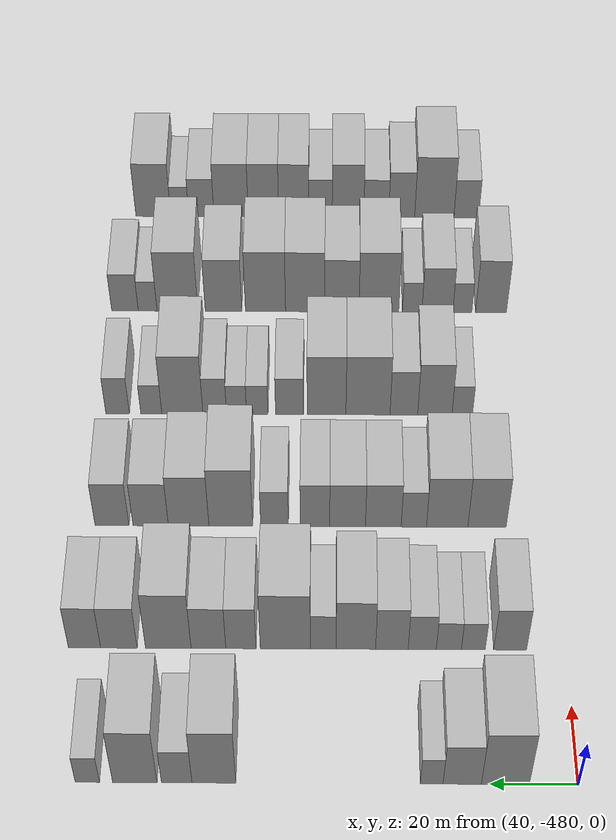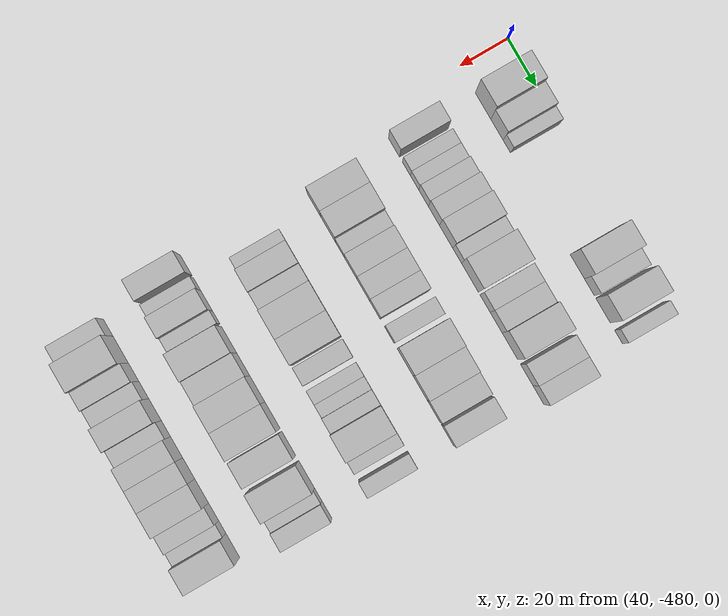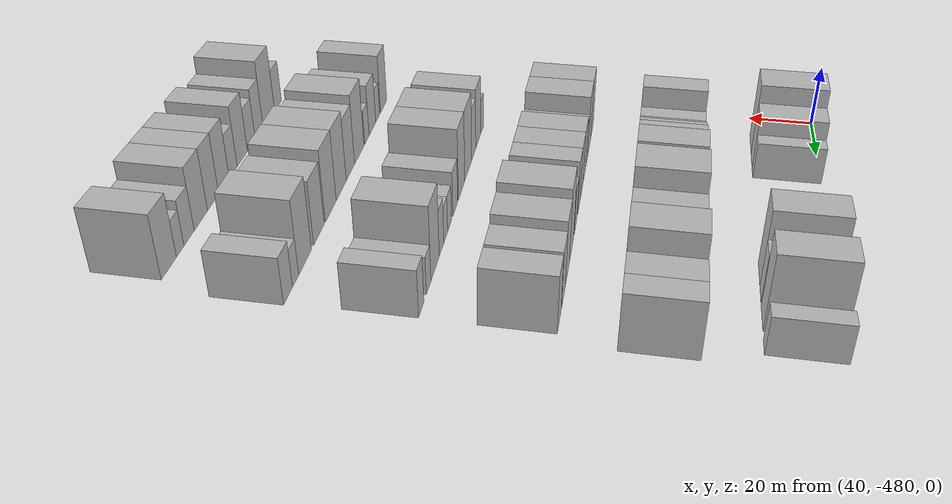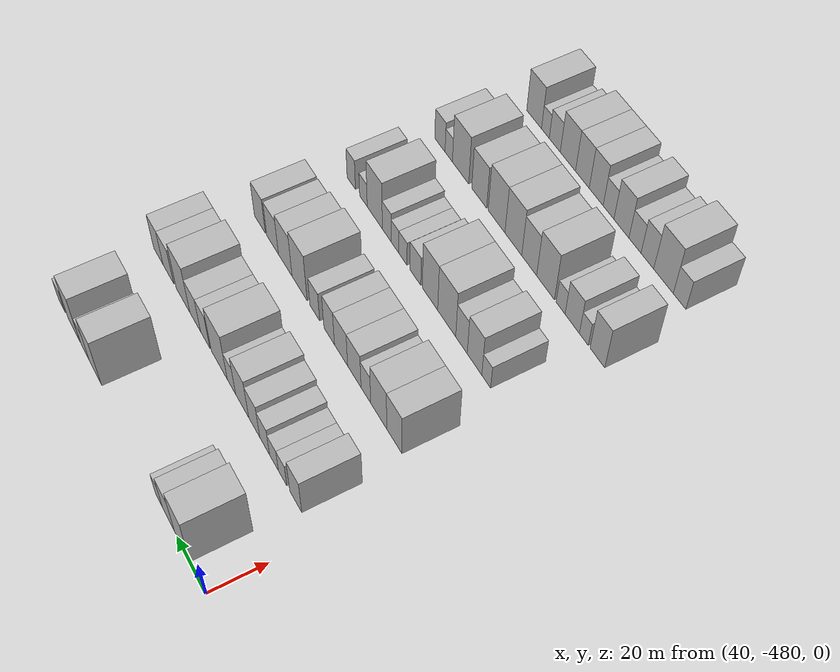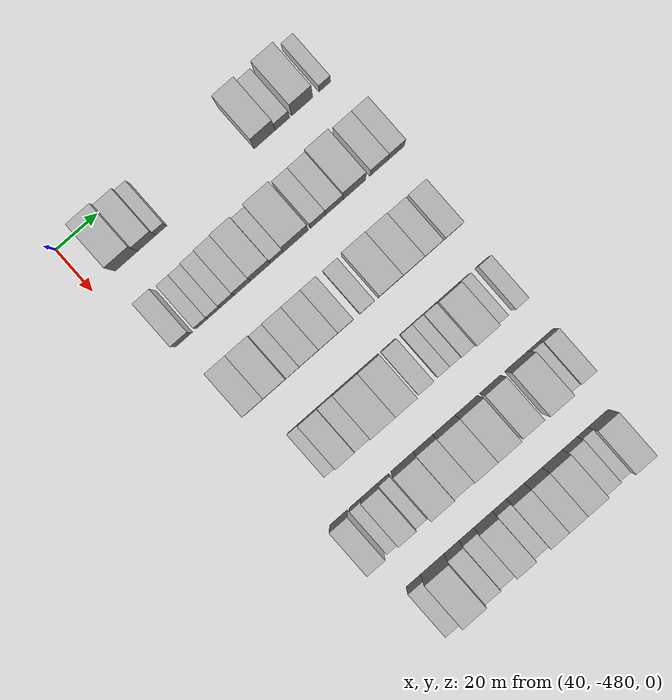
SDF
<sdf version="1.6">
 <world name="default">
  <model name="building_13">
   <static>1</static>
   <pose>50.0000 -463.4643 0 0.000000 0.000000 0.000000</pose>
   <link name="link">
    <pose>0 0 12.00 0 0 0</pose>
    <collision name="collision"><geometry><box><size>20.0000 10.9425 24.0000</size></box></geometry></collision>
    <visual name="visual">
     <cast_shadows>0</cast_shadows>
     <geometry><box><size>20.0000 10.9425 24.0000</size></box></geometry>
     <material>
      <script>
       <uri>model://HANNAS_wall/materials/scripts</uri>
       <uri>model://HANNAS_wall/materials/textures</uri>
       <name>vrc/HANNAS_wall</name>
      </script>
     </material>
    </visual>
   </link>
  </model>
  <model name="building_14">
   <static>1</static>
   <pose>50.0000 -453.6241 0 0.000000 0.000000 0.000000</pose>
   <link name="link">
    <pose>0 0 9.00 0 0 0</pose>
    <collision name="collision"><geometry><box><size>20.0000 8.7379 18.0000</size></box></geometry></collision>
    <visual name="visual">
     <cast_shadows>0</cast_shadows>
     <geometry><box><size>20.0000 8.7379 18.0000</size></box></geometry>
     <material>
      <script>
       <uri>model://HANNAS_wall/materials/scripts</uri>
       <uri>model://HANNAS_wall/materials/textures</uri>
       <name>vrc/HANNAS_wall</name>
      </script>
     </material>
    </visual>
   </link>
  </model>
  <model name="building_15">
   <static>1</static>
   <pose>50.0000 -446.6677 0 0.000000 0.000000 0.000000</pose>
   <link name="link">
    <pose>0 0 6.00 0 0 0</pose>
    <collision name="collision"><geometry><box><size>20.0000 5.1750 12.0000</size></box></geometry></collision>
    <visual name="visual">
     <cast_shadows>0</cast_shadows>
     <geometry><box><size>20.0000 5.1750 12.0000</size></box></geometry>
     <material>
      <script>
       <uri>model://HANNAS_wall/materials/scripts</uri>
       <uri>model://HANNAS_wall/materials/textures</uri>
       <name>vrc/HANNAS_wall</name>
      </script>
     </material>
    </visual>
   </link>
  </model>
  <model name="building_16">
   <static>1</static>
   <pose>50.0000 -397.0760 0 0.000000 0.000000 0.000000</pose>
   <link name="link">
    <pose>0 0 12.00 0 0 0</pose>
    <collision name="collision"><geometry><box><size>20.0000 10.0028 24.0000</size></box></geometry></collision>
    <visual name="visual">
     <cast_shadows>0</cast_shadows>
     <geometry><box><size>20.0000 10.0028 24.0000</size></box></geometry>
     <material>
      <script>
       <uri>model://HANNAS_wall/materials/scripts</uri>
       <uri>model://HANNAS_wall/materials/textures</uri>
       <name>vrc/HANNAS_wall</name>
      </script>
     </material>
    </visual>
   </link>
  </model>
  <model name="building_17">
   <static>1</static>
   <pose>50.0000 -388.5987 0 0.000000 0.000000 0.000000</pose>
   <link name="link">
    <pose>0 0 7.50 0 0 0</pose>
    <collision name="collision"><geometry><box><size>20.0000 6.9518 15.0000</size></box></geometry></collision>
    <visual name="visual">
     <cast_shadows>0</cast_shadows>
     <geometry><box><size>20.0000 6.9518 15.0000</size></box></geometry>
     <material>
      <script>
       <uri>model://HANNAS_wall/materials/scripts</uri>
       <uri>model://HANNAS_wall/materials/textures</uri>
       <name>vrc/HANNAS_wall</name>
      </script>
     </material>
    </visual>
   </link>
  </model>
  <model name="building_18">
   <static>1</static>
   <pose>50.0000 -379.0550 0 0.000000 0.000000 0.000000</pose>
   <link name="link">
    <pose>0 0 12.00 0 0 0</pose>
    <collision name="collision"><geometry><box><size>20.0000 10.1357 24.0000</size></box></geometry></collision>
    <visual name="visual">
     <cast_shadows>0</cast_shadows>
     <geometry><box><size>20.0000 10.1357 24.0000</size></box></geometry>
     <material>
      <script>
       <uri>model://HANNAS_wall/materials/scripts</uri>
       <uri>model://HANNAS_wall/materials/textures</uri>
       <name>vrc/HANNAS_wall</name>
      </script>
     </material>
    </visual>
   </link>
  </model>
  <model name="building_19">
   <static>1</static>
   <pose>50.0000 -368.2282 0 0.000000 0.000000 0.000000</pose>
   <link name="link">
    <pose>0 0 6.00 0 0 0</pose>
    <collision name="collision"><geometry><box><size>20.0000 5.5179 12.0000</size></box></geometry></collision>
    <visual name="visual">
     <cast_shadows>0</cast_shadows>
     <geometry><box><size>20.0000 5.5179 12.0000</size></box></geometry>
     <material>
      <script>
       <uri>model://HANNAS_wall/materials/scripts</uri>
       <uri>model://HANNAS_wall/materials/textures</uri>
       <name>vrc/HANNAS_wall</name>
      </script>
     </material>
    </visual>
   </link>
  </model>
  <model name="building_129">
   <static>1</static>
   <pose>85.0000 -466.4893 0 0.000000 0.000000 0.000000</pose>
   <link name="link">
    <pose>0 0 9.00 0 0 0</pose>
    <collision name="collision"><geometry><box><size>20.0000 7.8725 18.0000</size></box></geometry></collision>
    <visual name="visual">
     <cast_shadows>0</cast_shadows>
     <geometry><box><size>20.0000 7.8725 18.0000</size></box></geometry>
     <material>
      <script>
       <uri>model://HANNAS_wall/materials/scripts</uri>
       <uri>model://HANNAS_wall/materials/textures</uri>
       <name>vrc/HANNAS_wall</name>
      </script>
     </material>
    </visual>
   </link>
  </model>
  <model name="building_130">
   <static>1</static>
   <pose>85.0000 -457.6998 0 0.000000 0.000000 0.000000</pose>
   <link name="link">
    <pose>0 0 6.00 0 0 0</pose>
    <collision name="collision"><geometry><box><size>20.0000 5.7066 12.0000</size></box></geometry></collision>
    <visual name="visual">
     <cast_shadows>0</cast_shadows>
     <geometry><box><size>20.0000 5.7066 12.0000</size></box></geometry>
     <material>
      <script>
       <uri>model://HANNAS_wall/materials/scripts</uri>
       <uri>model://HANNAS_wall/materials/textures</uri>
       <name>vrc/HANNAS_wall</name>
      </script>
     </material>
    </visual>
   </link>
  </model>
  <model name="building_131">
   <static>1</static>
   <pose>85.0000 -451.8606 0 0.000000 0.000000 0.000000</pose>
   <link name="link">
    <pose>0 0 6.00 0 0 0</pose>
    <collision name="collision"><geometry><box><size>20.0000 5.9718 12.0000</size></box></geometry></collision>
    <visual name="visual">
     <cast_shadows>0</cast_shadows>
     <geometry><box><size>20.0000 5.9718 12.0000</size></box></geometry>
     <material>
      <script>
       <uri>model://HANNAS_wall/materials/scripts</uri>
       <uri>model://HANNAS_wall/materials/textures</uri>
       <name>vrc/HANNAS_wall</name>
      </script>
     </material>
    </visual>
   </link>
  </model>
  <model name="building_132">
   <static>1</static>
   <pose>85.0000 -445.5082 0 0.000000 0.000000 0.000000</pose>
   <link name="link">
    <pose>0 0 7.50 0 0 0</pose>
    <collision name="collision"><geometry><box><size>20.0000 6.7330 15.0000</size></box></geometry></collision>
    <visual name="visual">
     <cast_shadows>0</cast_shadows>
     <geometry><box><size>20.0000 6.7330 15.0000</size></box></geometry>
     <material>
      <script>
       <uri>model://HANNAS_wall/materials/scripts</uri>
       <uri>model://HANNAS_wall/materials/textures</uri>
       <name>vrc/HANNAS_wall</name>
      </script>
     </material>
    </visual>
   </link>
  </model>
  <model name="building_133">
   <static>1</static>
   <pose>85.0000 -438.2456 0 0.000000 0.000000 0.000000</pose>
   <link name="link">
    <pose>0 0 9.00 0 0 0</pose>
    <collision name="collision"><geometry><box><size>20.0000 7.7922 18.0000</size></box></geometry></collision>
    <visual name="visual">
     <cast_shadows>0</cast_shadows>
     <geometry><box><size>20.0000 7.7922 18.0000</size></box></geometry>
     <material>
      <script>
       <uri>model://HANNAS_wall/materials/scripts</uri>
       <uri>model://HANNAS_wall/materials/textures</uri>
       <name>vrc/HANNAS_wall</name>
      </script>
     </material>
    </visual>
   </link>
  </model>
  <model name="building_134">
   <static>1</static>
   <pose>85.0000 -429.6137 0 0.000000 0.000000 0.000000</pose>
   <link name="link">
    <pose>0 0 10.50 0 0 0</pose>
    <collision name="collision"><geometry><box><size>20.0000 9.4715 21.0000</size></box></geometry></collision>
    <visual name="visual">
     <cast_shadows>0</cast_shadows>
     <geometry><box><size>20.0000 9.4715 21.0000</size></box></geometry>
     <material>
      <script>
       <uri>model://HANNAS_wall/materials/scripts</uri>
       <uri>model://HANNAS_wall/materials/textures</uri>
       <name>vrc/HANNAS_wall</name>
      </script>
     </material>
    </visual>
   </link>
  </model>
  <model name="building_135">
   <static>1</static>
   <pose>85.0000 -421.8166 0 0.000000 0.000000 0.000000</pose>
   <link name="link">
    <pose>0 0 7.50 0 0 0</pose>
    <collision name="collision"><geometry><box><size>20.0000 6.1227 15.0000</size></box></geometry></collision>
    <visual name="visual">
     <cast_shadows>0</cast_shadows>
     <geometry><box><size>20.0000 6.1227 15.0000</size></box></geometry>
     <material>
      <script>
       <uri>model://HANNAS_wall/materials/scripts</uri>
       <uri>model://HANNAS_wall/materials/textures</uri>
       <name>vrc/HANNAS_wall</name>
      </script>
     </material>
    </visual>
   </link>
  </model>
  <model name="building_136">
   <static>1</static>
   <pose>85.0000 -412.7860 0 0.000000 0.000000 0.000000</pose>
   <link name="link">
    <pose>0 0 12.00 0 0 0</pose>
    <collision name="collision"><geometry><box><size>20.0000 11.9385 24.0000</size></box></geometry></collision>
    <visual name="visual">
     <cast_shadows>0</cast_shadows>
     <geometry><box><size>20.0000 11.9385 24.0000</size></box></geometry>
     <material>
      <script>
       <uri>model://HANNAS_wall/materials/scripts</uri>
       <uri>model://HANNAS_wall/materials/textures</uri>
       <name>vrc/HANNAS_wall</name>
      </script>
     </material>
    </visual>
   </link>
  </model>
  <model name="building_137">
   <static>1</static>
   <pose>85.0000 -402.1989 0 0.000000 0.000000 0.000000</pose>
   <link name="link">
    <pose>0 0 9.00 0 0 0</pose>
    <collision name="collision"><geometry><box><size>20.0000 7.2358 18.0000</size></box></geometry></collision>
    <visual name="visual">
     <cast_shadows>0</cast_shadows>
     <geometry><box><size>20.0000 7.2358 18.0000</size></box></geometry>
     <material>
      <script>
       <uri>model://HANNAS_wall/materials/scripts</uri>
       <uri>model://HANNAS_wall/materials/textures</uri>
       <name>vrc/HANNAS_wall</name>
      </script>
     </material>
    </visual>
   </link>
  </model>
  <model name="building_138">
   <static>1</static>
   <pose>85.0000 -394.4240 0 0.000000 0.000000 0.000000</pose>
   <link name="link">
    <pose>0 0 9.00 0 0 0</pose>
    <collision name="collision"><geometry><box><size>20.0000 8.3141 18.0000</size></box></geometry></collision>
    <visual name="visual">
     <cast_shadows>0</cast_shadows>
     <geometry><box><size>20.0000 8.3141 18.0000</size></box></geometry>
     <material>
      <script>
       <uri>model://HANNAS_wall/materials/scripts</uri>
       <uri>model://HANNAS_wall/materials/textures</uri>
       <name>vrc/HANNAS_wall</name>
      </script>
     </material>
    </visual>
   </link>
  </model>
  <model name="building_139">
   <static>1</static>
   <pose>85.0000 -384.8266 0 0.000000 0.000000 0.000000</pose>
   <link name="link">
    <pose>0 0 12.00 0 0 0</pose>
    <collision name="collision"><geometry><box><size>20.0000 10.8806 24.0000</size></box></geometry></collision>
    <visual name="visual">
     <cast_shadows>0</cast_shadows>
     <geometry><box><size>20.0000 10.8806 24.0000</size></box></geometry>
     <material>
      <script>
       <uri>model://HANNAS_wall/materials/scripts</uri>
       <uri>model://HANNAS_wall/materials/textures</uri>
       <name>vrc/HANNAS_wall</name>
      </script>
     </material>
    </visual>
   </link>
  </model>
  <model name="building_140">
   <static>1</static>
   <pose>85.0000 -373.0223 0 0.000000 0.000000 0.000000</pose>
   <link name="link">
    <pose>0 0 9.00 0 0 0</pose>
    <collision name="collision"><geometry><box><size>20.0000 8.7279 18.0000</size></box></geometry></collision>
    <visual name="visual">
     <cast_shadows>0</cast_shadows>
     <geometry><box><size>20.0000 8.7279 18.0000</size></box></geometry>
     <material>
      <script>
       <uri>model://HANNAS_wall/materials/scripts</uri>
       <uri>model://HANNAS_wall/materials/textures</uri>
       <name>vrc/HANNAS_wall</name>
      </script>
     </material>
    </visual>
   </link>
  </model>
  <model name="building_141">
   <static>1</static>
   <pose>85.0000 -364.7977 0 0.000000 0.000000 0.000000</pose>
   <link name="link">
    <pose>0 0 9.00 0 0 0</pose>
    <collision name="collision"><geometry><box><size>20.0000 7.7214 18.0000</size></box></geometry></collision>
    <visual name="visual">
     <cast_shadows>0</cast_shadows>
     <geometry><box><size>20.0000 7.7214 18.0000</size></box></geometry>
     <material>
      <script>
       <uri>model://HANNAS_wall/materials/scripts</uri>
       <uri>model://HANNAS_wall/materials/textures</uri>
       <name>vrc/HANNAS_wall</name>
      </script>
     </material>
    </visual>
   </link>
  </model>
  <model name="building_256">
   <static>1</static>
   <pose>120.0000 -462.6688 0 0.000000 0.000000 0.000000</pose>
   <link name="link">
    <pose>0 0 10.50 0 0 0</pose>
    <collision name="collision"><geometry><box><size>20.0000 9.5851 21.0000</size></box></geometry></collision>
    <visual name="visual">
     <cast_shadows>0</cast_shadows>
     <geometry><box><size>20.0000 9.5851 21.0000</size></box></geometry>
     <material>
      <script>
       <uri>model://HANNAS_wall/materials/scripts</uri>
       <uri>model://HANNAS_wall/materials/textures</uri>
       <name>vrc/HANNAS_wall</name>
      </script>
     </material>
    </visual>
   </link>
  </model>
  <model name="building_257">
   <static>1</static>
   <pose>120.0000 -452.7045 0 0.000000 0.000000 0.000000</pose>
   <link name="link">
    <pose>0 0 10.50 0 0 0</pose>
    <collision name="collision"><geometry><box><size>20.0000 10.3435 21.0000</size></box></geometry></collision>
    <visual name="visual">
     <cast_shadows>0</cast_shadows>
     <geometry><box><size>20.0000 10.3435 21.0000</size></box></geometry>
     <material>
      <script>
       <uri>model://HANNAS_wall/materials/scripts</uri>
       <uri>model://HANNAS_wall/materials/textures</uri>
       <name>vrc/HANNAS_wall</name>
      </script>
     </material>
    </visual>
   </link>
  </model>
  <model name="building_258">
   <static>1</static>
   <pose>120.0000 -444.3731 0 0.000000 0.000000 0.000000</pose>
   <link name="link">
    <pose>0 0 7.50 0 0 0</pose>
    <collision name="collision"><geometry><box><size>20.0000 6.3193 15.0000</size></box></geometry></collision>
    <visual name="visual">
     <cast_shadows>0</cast_shadows>
     <geometry><box><size>20.0000 6.3193 15.0000</size></box></geometry>
     <material>
      <script>
       <uri>model://HANNAS_wall/materials/scripts</uri>
       <uri>model://HANNAS_wall/materials/textures</uri>
       <name>vrc/HANNAS_wall</name>
      </script>
     </material>
    </visual>
   </link>
  </model>
  <model name="building_259">
   <static>1</static>
   <pose>120.0000 -436.7441 0 0.000000 0.000000 0.000000</pose>
   <link name="link">
    <pose>0 0 9.00 0 0 0</pose>
    <collision name="collision"><geometry><box><size>20.0000 8.9385 18.0000</size></box></geometry></collision>
    <visual name="visual">
     <cast_shadows>0</cast_shadows>
     <geometry><box><size>20.0000 8.9385 18.0000</size></box></geometry>
     <material>
      <script>
       <uri>model://HANNAS_wall/materials/scripts</uri>
       <uri>model://HANNAS_wall/materials/textures</uri>
       <name>vrc/HANNAS_wall</name>
      </script>
     </material>
    </visual>
   </link>
  </model>
  <model name="building_260">
   <static>1</static>
   <pose>120.0000 -427.7985 0 0.000000 0.000000 0.000000</pose>
   <link name="link">
    <pose>0 0 9.00 0 0 0</pose>
    <collision name="collision"><geometry><box><size>20.0000 8.9528 18.0000</size></box></geometry></collision>
    <visual name="visual">
     <cast_shadows>0</cast_shadows>
     <geometry><box><size>20.0000 8.9528 18.0000</size></box></geometry>
     <material>
      <script>
       <uri>model://HANNAS_wall/materials/scripts</uri>
       <uri>model://HANNAS_wall/materials/textures</uri>
       <name>vrc/HANNAS_wall</name>
      </script>
     </material>
    </visual>
   </link>
  </model>
  <model name="building_261">
   <static>1</static>
   <pose>120.0000 -419.6604 0 0.000000 0.000000 0.000000</pose>
   <link name="link">
    <pose>0 0 9.00 0 0 0</pose>
    <collision name="collision"><geometry><box><size>20.0000 7.3235 18.0000</size></box></geometry></collision>
    <visual name="visual">
     <cast_shadows>0</cast_shadows>
     <geometry><box><size>20.0000 7.3235 18.0000</size></box></geometry>
     <material>
      <script>
       <uri>model://HANNAS_wall/materials/scripts</uri>
       <uri>model://HANNAS_wall/materials/textures</uri>
       <name>vrc/HANNAS_wall</name>
      </script>
     </material>
    </visual>
   </link>
  </model>
  <model name="building_262">
   <static>1</static>
   <pose>120.0000 -409.5541 0 0.000000 0.000000 0.000000</pose>
   <link name="link">
    <pose>0 0 7.50 0 0 0</pose>
    <collision name="collision"><geometry><box><size>20.0000 6.8890 15.0000</size></box></geometry></collision>
    <visual name="visual">
     <cast_shadows>0</cast_shadows>
     <geometry><box><size>20.0000 6.8890 15.0000</size></box></geometry>
     <material>
      <script>
       <uri>model://HANNAS_wall/materials/scripts</uri>
       <uri>model://HANNAS_wall/materials/textures</uri>
       <name>vrc/HANNAS_wall</name>
      </script>
     </material>
    </visual>
   </link>
  </model>
  <model name="building_263">
   <static>1</static>
   <pose>120.0000 -398.6266 0 0.000000 0.000000 0.000000</pose>
   <link name="link">
    <pose>0 0 12.00 0 0 0</pose>
    <collision name="collision"><geometry><box><size>20.0000 10.9659 24.0000</size></box></geometry></collision>
    <visual name="visual">
     <cast_shadows>0</cast_shadows>
     <geometry><box><size>20.0000 10.9659 24.0000</size></box></geometry>
     <material>
      <script>
       <uri>model://HANNAS_wall/materials/scripts</uri>
       <uri>model://HANNAS_wall/materials/textures</uri>
       <name>vrc/HANNAS_wall</name>
      </script>
     </material>
    </visual>
   </link>
  </model>
  <model name="building_264">
   <static>1</static>
   <pose>120.0000 -388.0720 0 0.000000 0.000000 0.000000</pose>
   <link name="link">
    <pose>0 0 10.50 0 0 0</pose>
    <collision name="collision"><geometry><box><size>20.0000 10.1434 21.0000</size></box></geometry></collision>
    <visual name="visual">
     <cast_shadows>0</cast_shadows>
     <geometry><box><size>20.0000 10.1434 21.0000</size></box></geometry>
     <material>
      <script>
       <uri>model://HANNAS_wall/materials/scripts</uri>
       <uri>model://HANNAS_wall/materials/textures</uri>
       <name>vrc/HANNAS_wall</name>
      </script>
     </material>
    </visual>
   </link>
  </model>
  <model name="building_265">
   <static>1</static>
   <pose>120.0000 -378.5738 0 0.000000 0.000000 0.000000</pose>
   <link name="link">
    <pose>0 0 9.00 0 0 0</pose>
    <collision name="collision"><geometry><box><size>20.0000 8.8529 18.0000</size></box></geometry></collision>
    <visual name="visual">
     <cast_shadows>0</cast_shadows>
     <geometry><box><size>20.0000 8.8529 18.0000</size></box></geometry>
     <material>
      <script>
       <uri>model://HANNAS_wall/materials/scripts</uri>
       <uri>model://HANNAS_wall/materials/textures</uri>
       <name>vrc/HANNAS_wall</name>
      </script>
     </material>
    </visual>
   </link>
  </model>
  <model name="building_266">
   <static>1</static>
   <pose>120.0000 -368.8985 0 0.000000 0.000000 0.000000</pose>
   <link name="link">
    <pose>0 0 9.00 0 0 0</pose>
    <collision name="collision"><geometry><box><size>20.0000 8.4978 18.0000</size></box></geometry></collision>
    <visual name="visual">
     <cast_shadows>0</cast_shadows>
     <geometry><box><size>20.0000 8.4978 18.0000</size></box></geometry>
     <material>
      <script>
       <uri>model://HANNAS_wall/materials/scripts</uri>
       <uri>model://HANNAS_wall/materials/textures</uri>
       <name>vrc/HANNAS_wall</name>
      </script>
     </material>
    </visual>
   </link>
  </model>
  <model name="building_375">
   <static>1</static>
   <pose>155.0000 -457.9069 0 0.000000 0.000000 0.000000</pose>
   <link name="link">
    <pose>0 0 6.00 0 0 0</pose>
    <collision name="collision"><geometry><box><size>20.0000 5.3561 12.0000</size></box></geometry></collision>
    <visual name="visual">
     <cast_shadows>0</cast_shadows>
     <geometry><box><size>20.0000 5.3561 12.0000</size></box></geometry>
     <material>
      <script>
       <uri>model://HANNAS_wall/materials/scripts</uri>
       <uri>model://HANNAS_wall/materials/textures</uri>
       <name>vrc/HANNAS_wall</name>
      </script>
     </material>
    </visual>
   </link>
  </model>
  <model name="building_376">
   <static>1</static>
   <pose>155.0000 -450.7544 0 0.000000 0.000000 0.000000</pose>
   <link name="link">
    <pose>0 0 10.50 0 0 0</pose>
    <collision name="collision"><geometry><box><size>20.0000 8.9489 21.0000</size></box></geometry></collision>
    <visual name="visual">
     <cast_shadows>0</cast_shadows>
     <geometry><box><size>20.0000 8.9489 21.0000</size></box></geometry>
     <material>
      <script>
       <uri>model://HANNAS_wall/materials/scripts</uri>
       <uri>model://HANNAS_wall/materials/textures</uri>
       <name>vrc/HANNAS_wall</name>
      </script>
     </material>
    </visual>
   </link>
  </model>
  <model name="building_377">
   <static>1</static>
   <pose>155.0000 -442.6670 0 0.000000 0.000000 0.000000</pose>
   <link name="link">
    <pose>0 0 9.00 0 0 0</pose>
    <collision name="collision"><geometry><box><size>20.0000 7.2259 18.0000</size></box></geometry></collision>
    <visual name="visual">
     <cast_shadows>0</cast_shadows>
     <geometry><box><size>20.0000 7.2259 18.0000</size></box></geometry>
     <material>
      <script>
       <uri>model://HANNAS_wall/materials/scripts</uri>
       <uri>model://HANNAS_wall/materials/textures</uri>
       <name>vrc/HANNAS_wall</name>
      </script>
     </material>
    </visual>
   </link>
  </model>
  <model name="building_378">
   <static>1</static>
   <pose>155.0000 -433.2791 0 0.000000 0.000000 0.000000</pose>
   <link name="link">
    <pose>0 0 12.00 0 0 0</pose>
    <collision name="collision"><geometry><box><size>20.0000 11.5499 24.0000</size></box></geometry></collision>
    <visual name="visual">
     <cast_shadows>0</cast_shadows>
     <geometry><box><size>20.0000 11.5499 24.0000</size></box></geometry>
     <material>
      <script>
       <uri>model://HANNAS_wall/materials/scripts</uri>
       <uri>model://HANNAS_wall/materials/textures</uri>
       <name>vrc/HANNAS_wall</name>
      </script>
     </material>
    </visual>
   </link>
  </model>
  <model name="building_379">
   <static>1</static>
   <pose>155.0000 -422.4708 0 0.000000 0.000000 0.000000</pose>
   <link name="link">
    <pose>0 0 12.00 0 0 0</pose>
    <collision name="collision"><geometry><box><size>20.0000 10.0667 24.0000</size></box></geometry></collision>
    <visual name="visual">
     <cast_shadows>0</cast_shadows>
     <geometry><box><size>20.0000 10.0667 24.0000</size></box></geometry>
     <material>
      <script>
       <uri>model://HANNAS_wall/materials/scripts</uri>
       <uri>model://HANNAS_wall/materials/textures</uri>
       <name>vrc/HANNAS_wall</name>
      </script>
     </material>
    </visual>
   </link>
  </model>
  <model name="building_380">
   <static>1</static>
   <pose>155.0000 -412.8053 0 0.000000 0.000000 0.000000</pose>
   <link name="link">
    <pose>0 0 7.50 0 0 0</pose>
    <collision name="collision"><geometry><box><size>20.0000 7.2642 15.0000</size></box></geometry></collision>
    <visual name="visual">
     <cast_shadows>0</cast_shadows>
     <geometry><box><size>20.0000 7.2642 15.0000</size></box></geometry>
     <material>
      <script>
       <uri>model://HANNAS_wall/materials/scripts</uri>
       <uri>model://HANNAS_wall/materials/textures</uri>
       <name>vrc/HANNAS_wall</name>
      </script>
     </material>
    </visual>
   </link>
  </model>
  <model name="building_381">
   <static>1</static>
   <pose>155.0000 -404.3689 0 0.000000 0.000000 0.000000</pose>
   <link name="link">
    <pose>0 0 6.00 0 0 0</pose>
    <collision name="collision"><geometry><box><size>20.0000 5.6086 12.0000</size></box></geometry></collision>
    <visual name="visual">
     <cast_shadows>0</cast_shadows>
     <geometry><box><size>20.0000 5.6086 12.0000</size></box></geometry>
     <material>
      <script>
       <uri>model://HANNAS_wall/materials/scripts</uri>
       <uri>model://HANNAS_wall/materials/textures</uri>
       <name>vrc/HANNAS_wall</name>
      </script>
     </material>
    </visual>
   </link>
  </model>
  <model name="building_382">
   <static>1</static>
   <pose>155.0000 -398.9492 0 0.000000 0.000000 0.000000</pose>
   <link name="link">
    <pose>0 0 6.00 0 0 0</pose>
    <collision name="collision"><geometry><box><size>20.0000 5.2308 12.0000</size></box></geometry></collision>
    <visual name="visual">
     <cast_shadows>0</cast_shadows>
     <geometry><box><size>20.0000 5.2308 12.0000</size></box></geometry>
     <material>
      <script>
       <uri>model://HANNAS_wall/materials/scripts</uri>
       <uri>model://HANNAS_wall/materials/textures</uri>
       <name>vrc/HANNAS_wall</name>
      </script>
     </material>
    </visual>
   </link>
  </model>
  <model name="building_383">
   <static>1</static>
   <pose>155.0000 -393.2549 0 0.000000 0.000000 0.000000</pose>
   <link name="link">
    <pose>0 0 7.50 0 0 0</pose>
    <collision name="collision"><geometry><box><size>20.0000 6.1578 15.0000</size></box></geometry></collision>
    <visual name="visual">
     <cast_shadows>0</cast_shadows>
     <geometry><box><size>20.0000 6.1578 15.0000</size></box></geometry>
     <material>
      <script>
       <uri>model://HANNAS_wall/materials/scripts</uri>
       <uri>model://HANNAS_wall/materials/textures</uri>
       <name>vrc/HANNAS_wall</name>
      </script>
     </material>
    </visual>
   </link>
  </model>
  <model name="building_384">
   <static>1</static>
   <pose>155.0000 -384.8021 0 0.000000 0.000000 0.000000</pose>
   <link name="link">
    <pose>0 0 12.00 0 0 0</pose>
    <collision name="collision"><geometry><box><size>20.0000 10.7479 24.0000</size></box></geometry></collision>
    <visual name="visual">
     <cast_shadows>0</cast_shadows>
     <geometry><box><size>20.0000 10.7479 24.0000</size></box></geometry>
     <material>
      <script>
       <uri>model://HANNAS_wall/materials/scripts</uri>
       <uri>model://HANNAS_wall/materials/textures</uri>
       <name>vrc/HANNAS_wall</name>
      </script>
     </material>
    </visual>
   </link>
  </model>
  <model name="building_385">
   <static>1</static>
   <pose>155.0000 -376.6828 0 0.000000 0.000000 0.000000</pose>
   <link name="link">
    <pose>0 0 6.00 0 0 0</pose>
    <collision name="collision"><geometry><box><size>20.0000 5.4907 12.0000</size></box></geometry></collision>
    <visual name="visual">
     <cast_shadows>0</cast_shadows>
     <geometry><box><size>20.0000 5.4907 12.0000</size></box></geometry>
     <material>
      <script>
       <uri>model://HANNAS_wall/materials/scripts</uri>
       <uri>model://HANNAS_wall/materials/textures</uri>
       <name>vrc/HANNAS_wall</name>
      </script>
     </material>
    </visual>
   </link>
  </model>
  <model name="building_386">
   <static>1</static>
   <pose>155.0000 -367.8642 0 0.000000 0.000000 0.000000</pose>
   <link name="link">
    <pose>0 0 7.50 0 0 0</pose>
    <collision name="collision"><geometry><box><size>20.0000 6.1466 15.0000</size></box></geometry></collision>
    <visual name="visual">
     <cast_shadows>0</cast_shadows>
     <geometry><box><size>20.0000 6.1466 15.0000</size></box></geometry>
     <material>
      <script>
       <uri>model://HANNAS_wall/materials/scripts</uri>
       <uri>model://HANNAS_wall/materials/textures</uri>
       <name>vrc/HANNAS_wall</name>
      </script>
     </material>
    </visual>
   </link>
  </model>
  <model name="building_499">
   <static>1</static>
   <pose>190.0000 -467.1648 0 0.000000 0.000000 0.000000</pose>
   <link name="link">
    <pose>0 0 10.50 0 0 0</pose>
    <collision name="collision"><geometry><box><size>20.0000 8.4170 21.0000</size></box></geometry></collision>
    <visual name="visual">
     <cast_shadows>0</cast_shadows>
     <geometry><box><size>20.0000 8.4170 21.0000</size></box></geometry>
     <material>
      <script>
       <uri>model://HANNAS_wall/materials/scripts</uri>
       <uri>model://HANNAS_wall/materials/textures</uri>
       <name>vrc/HANNAS_wall</name>
      </script>
     </material>
    </visual>
   </link>
  </model>
  <model name="building_500">
   <static>1</static>
   <pose>190.0000 -459.3686 0 0.000000 0.000000 0.000000</pose>
   <link name="link">
    <pose>0 0 6.00 0 0 0</pose>
    <collision name="collision"><geometry><box><size>20.0000 5.1755 12.0000</size></box></geometry></collision>
    <visual name="visual">
     <cast_shadows>0</cast_shadows>
     <geometry><box><size>20.0000 5.1755 12.0000</size></box></geometry>
     <material>
      <script>
       <uri>model://HANNAS_wall/materials/scripts</uri>
       <uri>model://HANNAS_wall/materials/textures</uri>
       <name>vrc/HANNAS_wall</name>
      </script>
     </material>
    </visual>
   </link>
  </model>
  <model name="building_501">
   <static>1</static>
   <pose>190.0000 -452.5673 0 0.000000 0.000000 0.000000</pose>
   <link name="link">
    <pose>0 0 9.00 0 0 0</pose>
    <collision name="collision"><geometry><box><size>20.0000 8.4271 18.0000</size></box></geometry></collision>
    <visual name="visual">
     <cast_shadows>0</cast_shadows>
     <geometry><box><size>20.0000 8.4271 18.0000</size></box></geometry>
     <material>
      <script>
       <uri>model://HANNAS_wall/materials/scripts</uri>
       <uri>model://HANNAS_wall/materials/textures</uri>
       <name>vrc/HANNAS_wall</name>
      </script>
     </material>
    </visual>
   </link>
  </model>
  <model name="building_502">
   <static>1</static>
   <pose>190.0000 -445.6973 0 0.000000 0.000000 0.000000</pose>
   <link name="link">
    <pose>0 0 6.00 0 0 0</pose>
    <collision name="collision"><geometry><box><size>20.0000 5.3130 12.0000</size></box></geometry></collision>
    <visual name="visual">
     <cast_shadows>0</cast_shadows>
     <geometry><box><size>20.0000 5.3130 12.0000</size></box></geometry>
     <material>
      <script>
       <uri>model://HANNAS_wall/materials/scripts</uri>
       <uri>model://HANNAS_wall/materials/textures</uri>
       <name>vrc/HANNAS_wall</name>
      </script>
     </material>
    </visual>
   </link>
  </model>
  <model name="building_503">
   <static>1</static>
   <pose>190.0000 -436.6129 0 0.000000 0.000000 0.000000</pose>
   <link name="link">
    <pose>0 0 12.00 0 0 0</pose>
    <collision name="collision"><geometry><box><size>20.0000 10.8556 24.0000</size></box></geometry></collision>
    <visual name="visual">
     <cast_shadows>0</cast_shadows>
     <geometry><box><size>20.0000 10.8556 24.0000</size></box></geometry>
     <material>
      <script>
       <uri>model://HANNAS_wall/materials/scripts</uri>
       <uri>model://HANNAS_wall/materials/textures</uri>
       <name>vrc/HANNAS_wall</name>
      </script>
     </material>
    </visual>
   </link>
  </model>
  <model name="building_504">
   <static>1</static>
   <pose>190.0000 -426.5342 0 0.000000 0.000000 0.000000</pose>
   <link name="link">
    <pose>0 0 10.50 0 0 0</pose>
    <collision name="collision"><geometry><box><size>20.0000 9.3019 21.0000</size></box></geometry></collision>
    <visual name="visual">
     <cast_shadows>0</cast_shadows>
     <geometry><box><size>20.0000 9.3019 21.0000</size></box></geometry>
     <material>
      <script>
       <uri>model://HANNAS_wall/materials/scripts</uri>
       <uri>model://HANNAS_wall/materials/textures</uri>
       <name>vrc/HANNAS_wall</name>
      </script>
     </material>
    </visual>
   </link>
  </model>
  <model name="building_505">
   <static>1</static>
   <pose>190.0000 -416.5490 0 0.000000 0.000000 0.000000</pose>
   <link name="link">
    <pose>0 0 12.00 0 0 0</pose>
    <collision name="collision"><geometry><box><size>20.0000 10.6683 24.0000</size></box></geometry></collision>
    <visual name="visual">
     <cast_shadows>0</cast_shadows>
     <geometry><box><size>20.0000 10.6683 24.0000</size></box></geometry>
     <material>
      <script>
       <uri>model://HANNAS_wall/materials/scripts</uri>
       <uri>model://HANNAS_wall/materials/textures</uri>
       <name>vrc/HANNAS_wall</name>
      </script>
     </material>
    </visual>
   </link>
  </model>
  <model name="building_506">
   <static>1</static>
   <pose>190.0000 -405.7596 0 0.000000 0.000000 0.000000</pose>
   <link name="link">
    <pose>0 0 12.00 0 0 0</pose>
    <collision name="collision"><geometry><box><size>20.0000 10.9107 24.0000</size></box></geometry></collision>
    <visual name="visual">
     <cast_shadows>0</cast_shadows>
     <geometry><box><size>20.0000 10.9107 24.0000</size></box></geometry>
     <material>
      <script>
       <uri>model://HANNAS_wall/materials/scripts</uri>
       <uri>model://HANNAS_wall/materials/textures</uri>
       <name>vrc/HANNAS_wall</name>
      </script>
     </material>
    </visual>
   </link>
  </model>
  <model name="building_507">
   <static>1</static>
   <pose>190.0000 -394.3227 0 0.000000 0.000000 0.000000</pose>
   <link name="link">
    <pose>0 0 10.50 0 0 0</pose>
    <collision name="collision"><geometry><box><size>20.0000 9.9630 21.0000</size></box></geometry></collision>
    <visual name="visual">
     <cast_shadows>0</cast_shadows>
     <geometry><box><size>20.0000 9.9630 21.0000</size></box></geometry>
     <material>
      <script>
       <uri>model://HANNAS_wall/materials/scripts</uri>
       <uri>model://HANNAS_wall/materials/textures</uri>
       <name>vrc/HANNAS_wall</name>
      </script>
     </material>
    </visual>
   </link>
  </model>
  <model name="building_508">
   <static>1</static>
   <pose>190.0000 -381.7640 0 0.000000 0.000000 0.000000</pose>
   <link name="link">
    <pose>0 0 12.00 0 0 0</pose>
    <collision name="collision"><geometry><box><size>20.0000 11.1545 24.0000</size></box></geometry></collision>
    <visual name="visual">
     <cast_shadows>0</cast_shadows>
     <geometry><box><size>20.0000 11.1545 24.0000</size></box></geometry>
     <material>
      <script>
       <uri>model://HANNAS_wall/materials/scripts</uri>
       <uri>model://HANNAS_wall/materials/textures</uri>
       <name>vrc/HANNAS_wall</name>
      </script>
     </material>
    </visual>
   </link>
  </model>
  <model name="building_509">
   <static>1</static>
   <pose>190.0000 -373.6286 0 0.000000 0.000000 0.000000</pose>
   <link name="link">
    <pose>0 0 6.00 0 0 0</pose>
    <collision name="collision"><geometry><box><size>20.0000 5.1164 12.0000</size></box></geometry></collision>
    <visual name="visual">
     <cast_shadows>0</cast_shadows>
     <geometry><box><size>20.0000 5.1164 12.0000</size></box></geometry>
     <material>
      <script>
       <uri>model://HANNAS_wall/materials/scripts</uri>
       <uri>model://HANNAS_wall/materials/textures</uri>
       <name>vrc/HANNAS_wall</name>
      </script>
     </material>
    </visual>
   </link>
  </model>
  <model name="building_510">
   <static>1</static>
   <pose>190.0000 -367.4562 0 0.000000 0.000000 0.000000</pose>
   <link name="link">
    <pose>0 0 7.50 0 0 0</pose>
    <collision name="collision"><geometry><box><size>20.0000 7.2284 15.0000</size></box></geometry></collision>
    <visual name="visual">
     <cast_shadows>0</cast_shadows>
     <geometry><box><size>20.0000 7.2284 15.0000</size></box></geometry>
     <material>
      <script>
       <uri>model://HANNAS_wall/materials/scripts</uri>
       <uri>model://HANNAS_wall/materials/textures</uri>
       <name>vrc/HANNAS_wall</name>
      </script>
     </material>
    </visual>
   </link>
  </model>
  <model name="building_632">
   <static>1</static>
   <pose>225.0000 -461.9124 0 0.000000 0.000000 0.000000</pose>
   <link name="link">
    <pose>0 0 7.50 0 0 0</pose>
    <collision name="collision"><geometry><box><size>20.0000 7.0212 15.0000</size></box></geometry></collision>
    <visual name="visual">
     <cast_shadows>0</cast_shadows>
     <geometry><box><size>20.0000 7.0212 15.0000</size></box></geometry>
     <material>
      <script>
       <uri>model://HANNAS_wall/materials/scripts</uri>
       <uri>model://HANNAS_wall/materials/textures</uri>
       <name>vrc/HANNAS_wall</name>
      </script>
     </material>
    </visual>
   </link>
  </model>
  <model name="building_633">
   <static>1</static>
   <pose>225.0000 -452.8377 0 0.000000 0.000000 0.000000</pose>
   <link name="link">
    <pose>0 0 12.00 0 0 0</pose>
    <collision name="collision"><geometry><box><size>20.0000 11.1282 24.0000</size></box></geometry></collision>
    <visual name="visual">
     <cast_shadows>0</cast_shadows>
     <geometry><box><size>20.0000 11.1282 24.0000</size></box></geometry>
     <material>
      <script>
       <uri>model://HANNAS_wall/materials/scripts</uri>
       <uri>model://HANNAS_wall/materials/textures</uri>
       <name>vrc/HANNAS_wall</name>
      </script>
     </material>
    </visual>
   </link>
  </model>
  <model name="building_634">
   <static>1</static>
   <pose>225.0000 -443.6034 0 0.000000 0.000000 0.000000</pose>
   <link name="link">
    <pose>0 0 9.00 0 0 0</pose>
    <collision name="collision"><geometry><box><size>20.0000 7.3403 18.0000</size></box></geometry></collision>
    <visual name="visual">
     <cast_shadows>0</cast_shadows>
     <geometry><box><size>20.0000 7.3403 18.0000</size></box></geometry>
     <material>
      <script>
       <uri>model://HANNAS_wall/materials/scripts</uri>
       <uri>model://HANNAS_wall/materials/textures</uri>
       <name>vrc/HANNAS_wall</name>
      </script>
     </material>
    </visual>
   </link>
  </model>
  <model name="building_635">
   <static>1</static>
   <pose>225.0000 -436.3919 0 0.000000 0.000000 0.000000</pose>
   <link name="link">
    <pose>0 0 7.50 0 0 0</pose>
    <collision name="collision"><geometry><box><size>20.0000 7.0828 15.0000</size></box></geometry></collision>
    <visual name="visual">
     <cast_shadows>0</cast_shadows>
     <geometry><box><size>20.0000 7.0828 15.0000</size></box></geometry>
     <material>
      <script>
       <uri>model://HANNAS_wall/materials/scripts</uri>
       <uri>model://HANNAS_wall/materials/textures</uri>
       <name>vrc/HANNAS_wall</name>
      </script>
     </material>
    </visual>
   </link>
  </model>
  <model name="building_636">
   <static>1</static>
   <pose>225.0000 -428.3638 0 0.000000 0.000000 0.000000</pose>
   <link name="link">
    <pose>0 0 10.50 0 0 0</pose>
    <collision name="collision"><geometry><box><size>20.0000 8.9733 21.0000</size></box></geometry></collision>
    <visual name="visual">
     <cast_shadows>0</cast_shadows>
     <geometry><box><size>20.0000 8.9733 21.0000</size></box></geometry>
     <material>
      <script>
       <uri>model://HANNAS_wall/materials/scripts</uri>
       <uri>model://HANNAS_wall/materials/textures</uri>
       <name>vrc/HANNAS_wall</name>
      </script>
     </material>
    </visual>
   </link>
  </model>
  <model name="building_637">
   <static>1</static>
   <pose>225.0000 -420.5857 0 0.000000 0.000000 0.000000</pose>
   <link name="link">
    <pose>0 0 7.50 0 0 0</pose>
    <collision name="collision"><geometry><box><size>20.0000 6.5830 15.0000</size></box></geometry></collision>
    <visual name="visual">
     <cast_shadows>0</cast_shadows>
     <geometry><box><size>20.0000 6.5830 15.0000</size></box></geometry>
     <material>
      <script>
       <uri>model://HANNAS_wall/materials/scripts</uri>
       <uri>model://HANNAS_wall/materials/textures</uri>
       <name>vrc/HANNAS_wall</name>
      </script>
     </material>
    </visual>
   </link>
  </model>
  <model name="building_638">
   <static>1</static>
   <pose>225.0000 -413.0093 0 0.000000 0.000000 0.000000</pose>
   <link name="link">
    <pose>0 0 10.50 0 0 0</pose>
    <collision name="collision"><geometry><box><size>20.0000 8.5698 21.0000</size></box></geometry></collision>
    <visual name="visual">
     <cast_shadows>0</cast_shadows>
     <geometry><box><size>20.0000 8.5698 21.0000</size></box></geometry>
     <material>
      <script>
       <uri>model://HANNAS_wall/materials/scripts</uri>
       <uri>model://HANNAS_wall/materials/textures</uri>
       <name>vrc/HANNAS_wall</name>
      </script>
     </material>
    </visual>
   </link>
  </model>
  <model name="building_639">
   <static>1</static>
   <pose>225.0000 -404.4216 0 0.000000 0.000000 0.000000</pose>
   <link name="link">
    <pose>0 0 10.50 0 0 0</pose>
    <collision name="collision"><geometry><box><size>20.0000 8.6057 21.0000</size></box></geometry></collision>
    <visual name="visual">
     <cast_shadows>0</cast_shadows>
     <geometry><box><size>20.0000 8.6057 21.0000</size></box></geometry>
     <material>
      <script>
       <uri>model://HANNAS_wall/materials/scripts</uri>
       <uri>model://HANNAS_wall/materials/textures</uri>
       <name>vrc/HANNAS_wall</name>
      </script>
     </material>
    </visual>
   </link>
  </model>
  <model name="building_640">
   <static>1</static>
   <pose>225.0000 -395.2421 0 0.000000 0.000000 0.000000</pose>
   <link name="link">
    <pose>0 0 10.50 0 0 0</pose>
    <collision name="collision"><geometry><box><size>20.0000 9.7532 21.0000</size></box></geometry></collision>
    <visual name="visual">
     <cast_shadows>0</cast_shadows>
     <geometry><box><size>20.0000 9.7532 21.0000</size></box></geometry>
     <material>
      <script>
       <uri>model://HANNAS_wall/materials/scripts</uri>
       <uri>model://HANNAS_wall/materials/textures</uri>
       <name>vrc/HANNAS_wall</name>
      </script>
     </material>
    </visual>
   </link>
  </model>
  <model name="building_641">
   <static>1</static>
   <pose>225.0000 -386.7887 0 0.000000 0.000000 0.000000</pose>
   <link name="link">
    <pose>0 0 7.50 0 0 0</pose>
    <collision name="collision"><geometry><box><size>20.0000 7.1536 15.0000</size></box></geometry></collision>
    <visual name="visual">
     <cast_shadows>0</cast_shadows>
     <geometry><box><size>20.0000 7.1536 15.0000</size></box></geometry>
     <material>
      <script>
       <uri>model://HANNAS_wall/materials/scripts</uri>
       <uri>model://HANNAS_wall/materials/textures</uri>
       <name>vrc/HANNAS_wall</name>
      </script>
     </material>
    </visual>
   </link>
  </model>
  <model name="building_642">
   <static>1</static>
   <pose>225.0000 -380.6569 0 0.000000 0.000000 0.000000</pose>
   <link name="link">
    <pose>0 0 6.00 0 0 0</pose>
    <collision name="collision"><geometry><box><size>20.0000 5.1100 12.0000</size></box></geometry></collision>
    <visual name="visual">
     <cast_shadows>0</cast_shadows>
     <geometry><box><size>20.0000 5.1100 12.0000</size></box></geometry>
     <material>
      <script>
       <uri>model://HANNAS_wall/materials/scripts</uri>
       <uri>model://HANNAS_wall/materials/textures</uri>
       <name>vrc/HANNAS_wall</name>
      </script>
     </material>
    </visual>
   </link>
  </model>
  <model name="building_643">
   <static>1</static>
   <pose>225.0000 -373.1681 0 0.000000 0.000000 0.000000</pose>
   <link name="link">
    <pose>0 0 10.50 0 0 0</pose>
    <collision name="collision"><geometry><box><size>20.0000 9.8676 21.0000</size></box></geometry></collision>
    <visual name="visual">
     <cast_shadows>0</cast_shadows>
     <geometry><box><size>20.0000 9.8676 21.0000</size></box></geometry>
     <material>
      <script>
       <uri>model://HANNAS_wall/materials/scripts</uri>
       <uri>model://HANNAS_wall/materials/textures</uri>
       <name>vrc/HANNAS_wall</name>
      </script>
     </material>
    </visual>
   </link>
  </model>
 </world>
</sdf>
